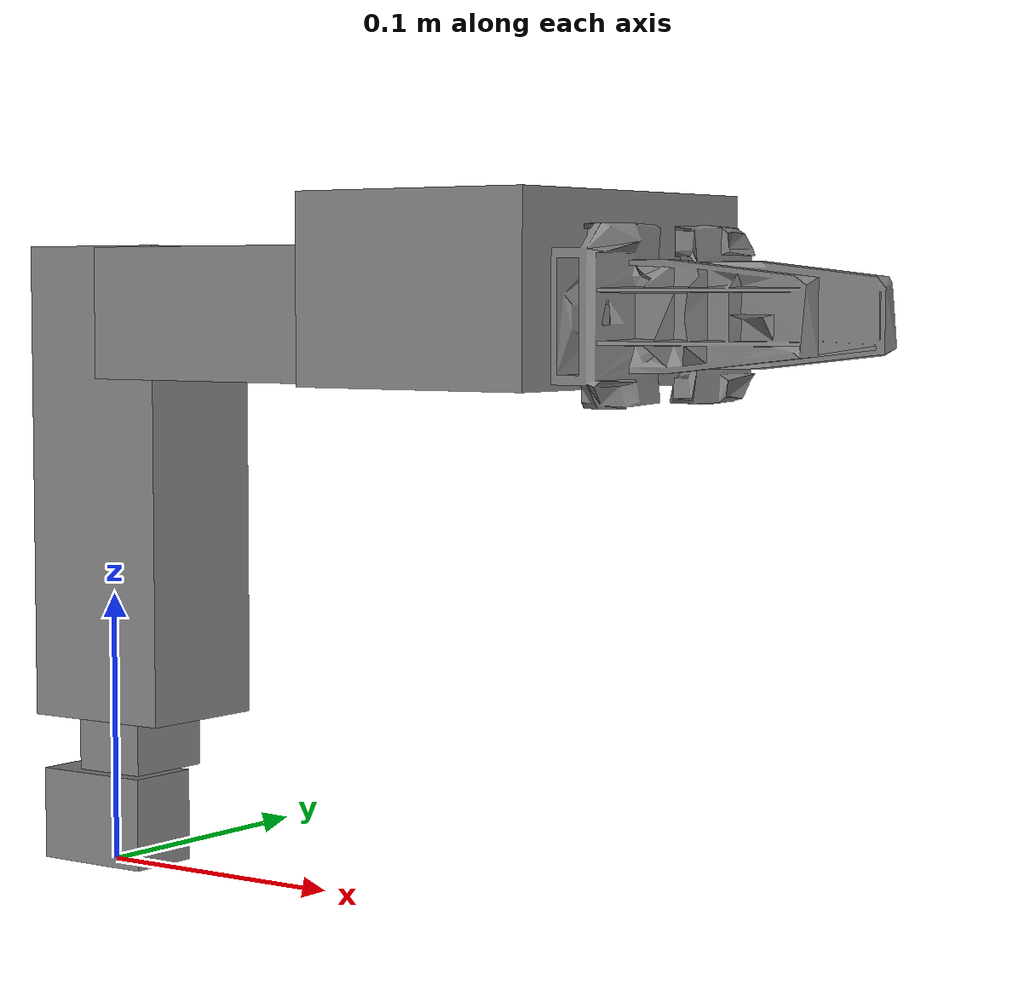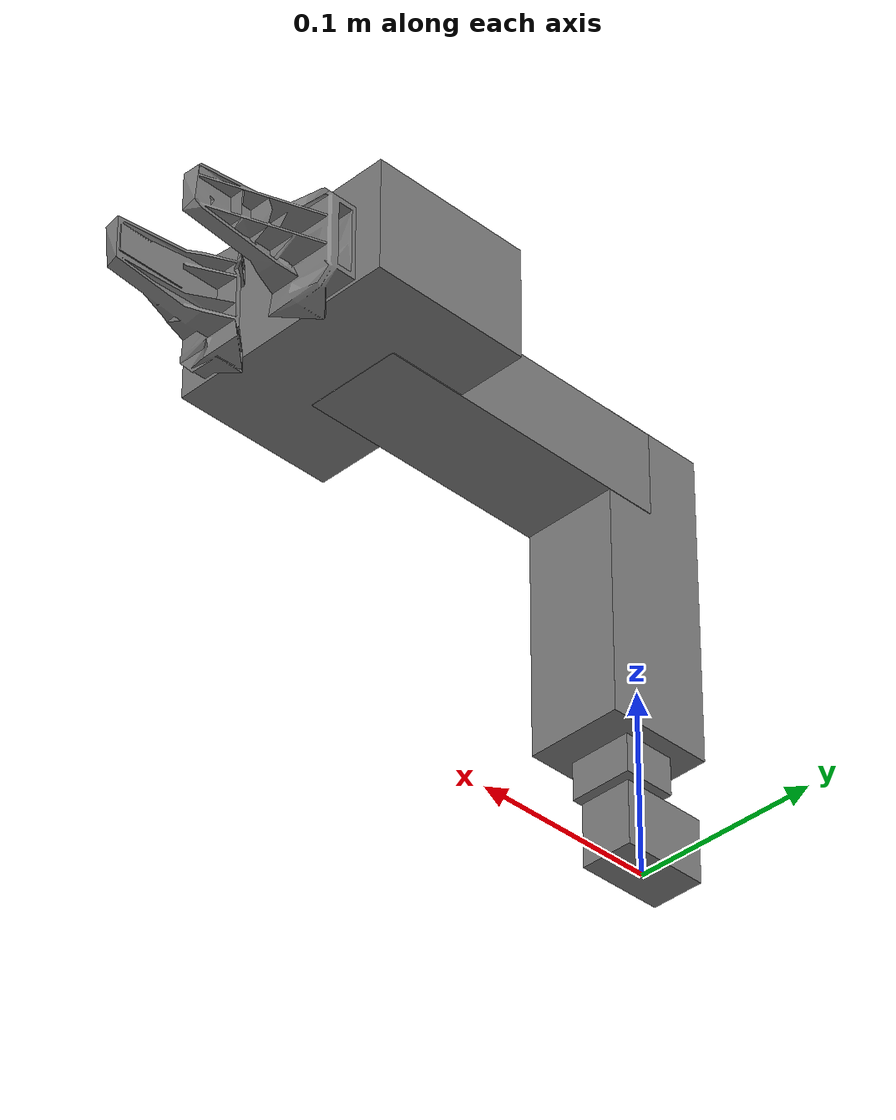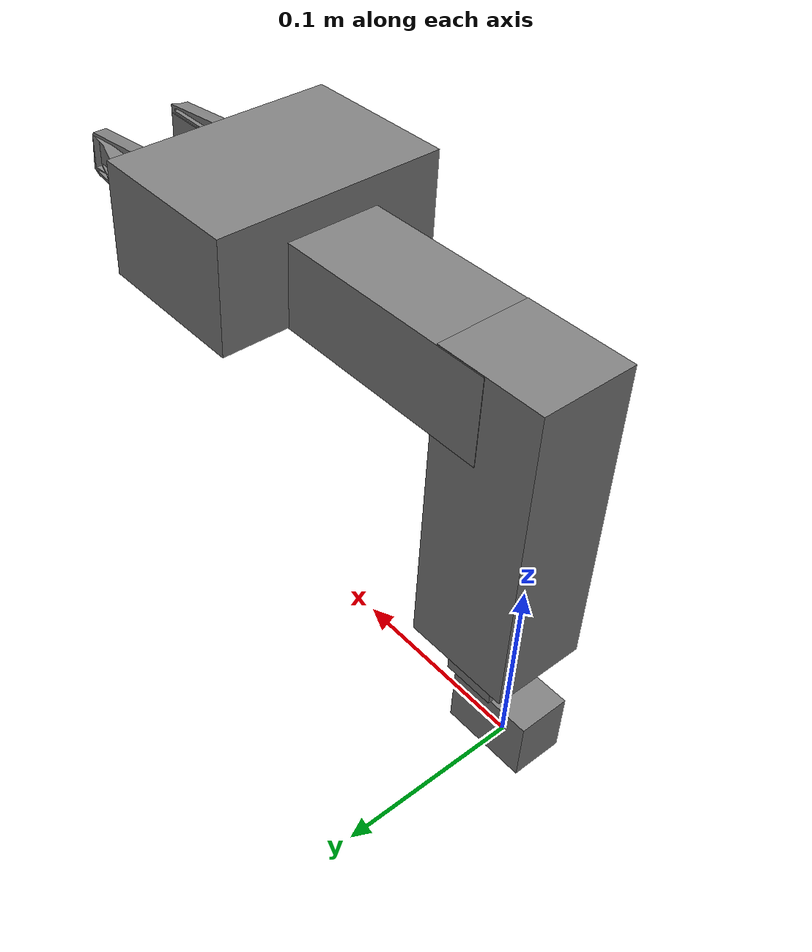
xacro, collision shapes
<?xml version="1.0"?>
<!-- OpenManipulator Chain -->
<robot name="open_manipulator_x" xmlns:xacro="http://ros.org/wiki/xacro">

  <xacro:arg name="run_arm_control" default="True"/>
  <xacro:arg name="gazebo" default="True"/>

  <!-- Import Rviz colors -->
  <xacro:include filename="$(find open_manipulator_x_description)/urdf/materials.xacro" />

  <!-- Import all Gazebo-customization elements, including Gazebo colors -->
  <xacro:if value="$(arg gazebo)">
    <xacro:include filename="$(find open_manipulator_x_description)/urdf/open_manipulator_x.gazebo.xacro" />
  </xacro:if>

  <!-- Import ROS2 Control elements -->
  <xacro:include filename="$(find open_manipulator_x_description)/urdf/open_manipulator_x.controller.xacro" />

  <!-- Import Transmission -->
  <xacro:include filename="$(find open_manipulator_x_description)/urdf/open_manipulator_x.transmission.xacro" />

  <!-- Import URDF -->
  <xacro:include filename="$(find open_manipulator_x_description)/urdf/open_manipulator_x.urdf.xacro" />

</robot>

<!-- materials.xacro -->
<robot xmlns:xacro="http://ros.org/wiki/xacro">

  <material name="black">
    <color rgba="0.0 0.0 0.0 1.0"/>
  </material>

  <material name="white">
    <color rgba="1.0 1.0 1.0 1.0"/>
  </material>

  <material name="red">
    <color rgba="0.8 0.0 0.0 1.0"/>
  </material>

  <material name="blue">
    <color rgba="0.0 0.0 0.8 1.0"/>
  </material>

  <material name="green">
    <color rgba="0.0 0.8 0.0 1.0"/>
  </material>

  <material name="grey">
    <color rgba="0.5 0.5 0.5 1.0"/>
  </material>

</robot>

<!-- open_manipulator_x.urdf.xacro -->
<robot xmlns:xacro="http://ros.org/wiki/xacro">

  <!-- Link 1 -->
  <link name="link1">
    <visual>
      <origin xyz="0 0 0" rpy="0 0 0"/>
      <geometry>
        <mesh filename="file://$(find open_manipulator_x_description)/meshes/chain_link1.stl" scale="0.001 0.001 0.001"/>
      </geometry>
      <material name="grey"/>
    </visual>

    <collision>
      <origin xyz="0 0 0.017" rpy="0 0 0"/>
      <geometry>
        <box size="0.0465 0.0285 0.034"/>
      </geometry>
    </collision>

    <inertial>
      <origin xyz="3.0876154e-04 0.0000000e+00 -1.2176461e-04" />
      <mass value="7.9119962e-02" />
      <inertia ixx="1.2505234e-05" ixy="0.0" ixz="-1.7855208e-07"
               iyy="2.1898364e-05" iyz="0.0"
               izz="1.9267361e-05" />
    </inertial>
  </link>
  <!--  Link 2 -->
  <link name="link2">
    <visual>
      <origin xyz="0 0 0.019" rpy="0 0 0"/>
      <geometry>
        <mesh filename="file://$(find open_manipulator_x_description)/meshes/chain_link2.stl" scale="0.001 0.001 0.001"/>
      </geometry>
      <material name="grey"/>
    </visual>

    <collision>
      <origin xyz="0 0 0.05025" rpy="0 0 0"/>
      <geometry>
        <box size="0.0285 0.034 0.0625"/>
      </geometry>
    </collision>

     <inertial>
      <origin xyz="-3.0184870e-04 5.4043684e-04 0.047433464e-02" />
      <mass value="9.8406837e-02" />
      <inertia ixx="3.4543422e-05" ixy="-1.6031095e-08" ixz="-3.8375155e-07"
               iyy="3.2689329e-05" iyz="2.8511935e-08"
               izz="1.8850320e-05" />
    </inertial>
  </link>
  <!--  Link 3 -->
  <link name="link3">
    <visual>
      <origin xyz="0 0 0" rpy="0 0 0"/>
      <geometry>
        <mesh filename="file://$(find open_manipulator_x_description)/meshes/chain_link3.stl" scale="0.001 0.001 0.001"/>
      </geometry>
      <material name="grey"/>
    </visual>

    <collision>
      <origin xyz="0.0018125 0 0.066" rpy="0 0 0"/>
      <geometry>
        <box size="0.05875 0.052 0.172"/>
      </geometry>
    </collision>

    <inertial>
      <origin xyz="1.0308393e-02 3.7743363e-04 1.0170197e-01" />
      <mass value="1.3850917e-01" />
      <inertia ixx="3.3055381e-04" ixy="-9.7940978e-08" ixz="-3.8505711e-05"
               iyy="3.4290447e-04" iyz="-1.5717516e-06"
               izz="6.0346498e-05" />
    </inertial>
  </link>
  <!--  Link 4 -->
  <link name="link4">
    <visual>
      <origin xyz="0 0 0" rpy="0 0 0"/>
      <geometry>
        <mesh filename="file://$(find open_manipulator_x_description)/meshes/chain_link4.stl" scale="0.001 0.001 0.001"/>
      </geometry>
      <material name="grey"/>
    </visual>

    <collision>
      <origin xyz="0.06365 0.0 0.0" rpy="0 0 0"/>
      <geometry>
        <box size="0.1673 0.0526 0.047"/>
      </geometry>
    </collision>

     <inertial>
      <origin xyz="9.0909590e-02 3.8929816e-04 2.2413279e-04" />
      <mass value="1.3274562e-01" />
      <inertia ixx="3.0654178e-05" ixy="-1.2764155e-06" ixz="-2.6874417e-07"
               iyy="2.4230292e-04" iyz="1.1559550e-08"
               izz="2.5155057e-04" />
    </inertial>
  </link>
  <!--  Link 5 -->
  <link name="link5">
    <visual>
      <origin xyz="0 0 0" rpy="0 0 0"/>
      <geometry>
        <mesh filename="file://$(find open_manipulator_x_description)/meshes/chain_link5.stl" scale="0.001 0.001 0.001"/>
      </geometry>
      <material name="grey"/>
    </visual>

    <collision>
      <origin xyz="0.0242 0 0.008375" rpy="0 0 0"/>
      <geometry>
        <box size="0.0884 0.1286  0.06275"/>
      </geometry>
    </collision>

     <inertial>
      <origin xyz="4.4206755e-02 3.6839985e-07 8.9142216e-03" />
      <mass value="1.4327573e-01" />
      <inertia ixx="8.0870749e-05" ixy="0.0" ixz="-1.0157896e-06"
               iyy="7.5980465e-05" iyz="0.0"
               izz="9.3127351e-05" />
    </inertial>
  </link>
  <!--  Gripper link -->
  <link name="gripper_link">
    <visual>
      <origin xyz="0.0 0.0 0" rpy="0 0 0"/>
      <geometry>
        <mesh filename="file://$(find open_manipulator_x_description)/meshes/chain_link_grip_l.stl" scale="0.001 0.001 0.001"/>
      </geometry>
      <material name="grey"/>
    </visual>

    <collision>
      <origin xyz="0 0 0" rpy="0 0 0"/>
      <geometry>
        <mesh filename="file://$(find open_manipulator_x_description)/meshes/chain_link_grip_l_low_poly.stl" scale="0.001 0.001 0.001"/>
      </geometry>
      <surface>
          <friction>
            <ode>
              <mu>100</mu>
              <mu2>100</mu2>
            </ode>
          </friction>
          <contact>
            <ode>
              <max_vel>.1</max_vel>
              <min_depth>0.003</min_depth>
            </ode>
          </contact>
      </surface>
    </collision>

    <inertial>
      <origin xyz="0 0 0" />
      <mass value="1.0e-02" />
      <inertia ixx="1.0e-03" ixy="0.0" ixz="0.0"
               iyy="1.0e-03" iyz="0.0"
               izz="1.0e-03" />
    </inertial>
  </link>
  <!--  Gripper link sub -->
  <link name="gripper_link_sub">
    <visual>
      <origin xyz="0.0 -0.0 0" rpy="0 0 0"/>
      <geometry>
        <mesh filename="file://$(find open_manipulator_x_description)/meshes/chain_link_grip_r.stl" scale="0.001 0.001 0.001"/>
      </geometry>
      <material name="grey"/>
    </visual>

    <collision>
      <origin xyz="0 0 0" rpy="0 0 0"/>
      <geometry>
        <mesh filename="file://$(find open_manipulator_x_description)/meshes/chain_link_grip_r_low_poly.stl" scale="0.001 0.001 0.001"/>
      </geometry>

      <surface>
          <friction>
            <ode>
              <mu>100</mu>
              <mu2>100</mu2>
            </ode>
          </friction>
          <contact>
            <ode>
              <max_vel>.1</max_vel>
              <min_depth>0.003</min_depth>
            </ode>
          </contact>
      </surface>
    </collision>

    <inertial>
      <origin xyz="0 0 0" />
      <mass value="1.0e-03" />
      <inertia ixx="1.0e-03" ixy="0.0" ixz="0.0"
               iyy="1.0e-03" iyz="0.0"
               izz="1.0e-03" />
    </inertial>
  </link>
  <!-- end effector link -->
  <link name="end_effector_link">
    <visual>
      <origin xyz="0 0 0" rpy="0 0 0"/>
      <geometry>
        <box size="0.01 0.01 0.01" />
      </geometry>
      <material name="red"/>
     </visual>

    <inertial>
      <origin xyz="0 0 0" />
      <mass value="1.0e-03" />
      <inertia ixx="1.0e-03" ixy="0.0" ixz="0.0"
               iyy="1.0e-03" iyz="0.0"
               izz="1.0e-03" />
    </inertial>
  </link>

  <!-- Joint 1 -->
  <joint name="joint1" type="revolute">
    <parent link="link1"/>
    <child link="link2"/>
    <origin xyz="0.012 0.0 0.017" rpy="0 0 0"/>
    <axis xyz="0 0 1"/>
    <limit velocity="4.8" effort="1" lower="-2.82743338823" upper="2.82743338823" />
    <dynamics damping="0.2" friction="0.5"/>
  </joint>

  <!--  Joint 2 -->
  <joint name="joint2" type="revolute">
    <parent link="link2"/>
    <child link="link3"/>
    <origin xyz="0.0 0.0 0.0595" rpy="0 0 0"/>
    <axis xyz="0 1 0"/>
    <limit velocity="4.8" effort="1" lower="-1.79070781255" upper="1.57079632679" />
    <dynamics damping="0.2" friction="0.5"/>
  </joint>

  <!--  Joint 3 -->
  <joint name="joint3" type="revolute">
    <parent link="link3"/>
    <child link="link4"/>
    <origin xyz="0.024 0 0.128" rpy="0 0 0"/>
    <axis xyz="0 1 0"/>
    <limit velocity="4.8" effort="1" lower="-0.94247779607" upper="1.38230076758" />
    <dynamics damping="0.2" friction="0.5"/>
  </joint>

  <!--  Joint 4 -->
  <joint name="joint4" type="revolute">
    <parent link="link4"/>
    <child link="link5"/>
    <origin xyz="0.124 0.0 0.0" rpy="0 0 0"/>
    <axis xyz="0 1 0"/>
    <limit velocity="4.8" effort="1" lower="-1.79070781255" upper="2.04203522483" />
    <dynamics damping="0.2" friction="0.5"/>
  </joint>

  <!--  Gripper joint -->
  <joint name="gripper" type="prismatic">
    <parent link="link5"/>
    <child link="gripper_link"/>
    <origin xyz="0.0817 0.021 0.0" rpy="0 0 0"/>
    <axis xyz="0 1 0"/>
    <limit velocity="4.8" effort="1" lower="-0.010" upper="0.019" />
    <dynamics damping="0.2" friction="0.5"/>
  </joint>

  <!--  Gripper joint sub -->
  <joint name="gripper_sub" type="prismatic">
    <parent link="link5"/>
    <child link="gripper_link_sub"/>
    <origin xyz="0.0817 -0.021 0.0" rpy="0 0 0"/>
    <axis xyz="0 -1 0"/>
    <limit velocity="4.8" effort="1" lower="-0.010" upper="0.019" />
    <dynamics damping="0.2" friction="0.5"/>
  </joint>

  <!-- end effector joint -->
  <joint name="end_effector_joint" type="fixed">
    <origin xyz="0.126 0.0 0.0" rpy="0 0 0"/>
    <parent link="link5"/>
    <child link="end_effector_link"/>
  </joint>

</robot>
